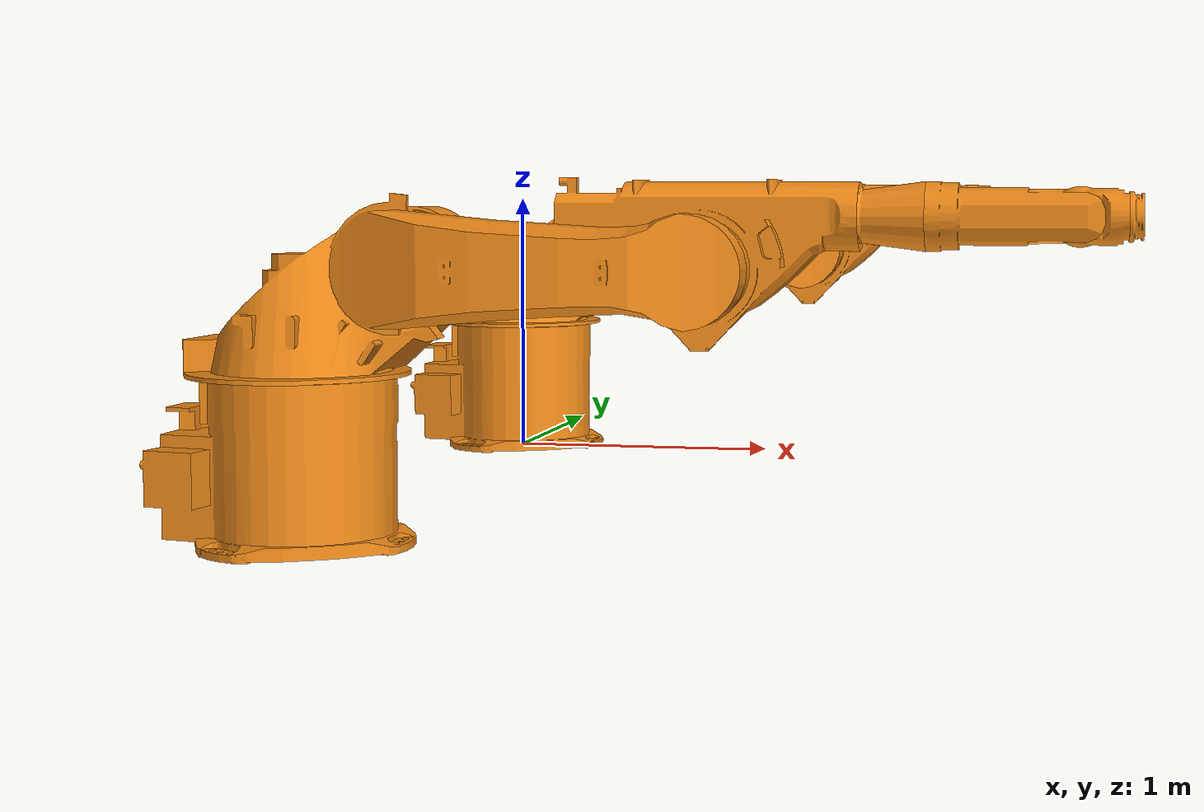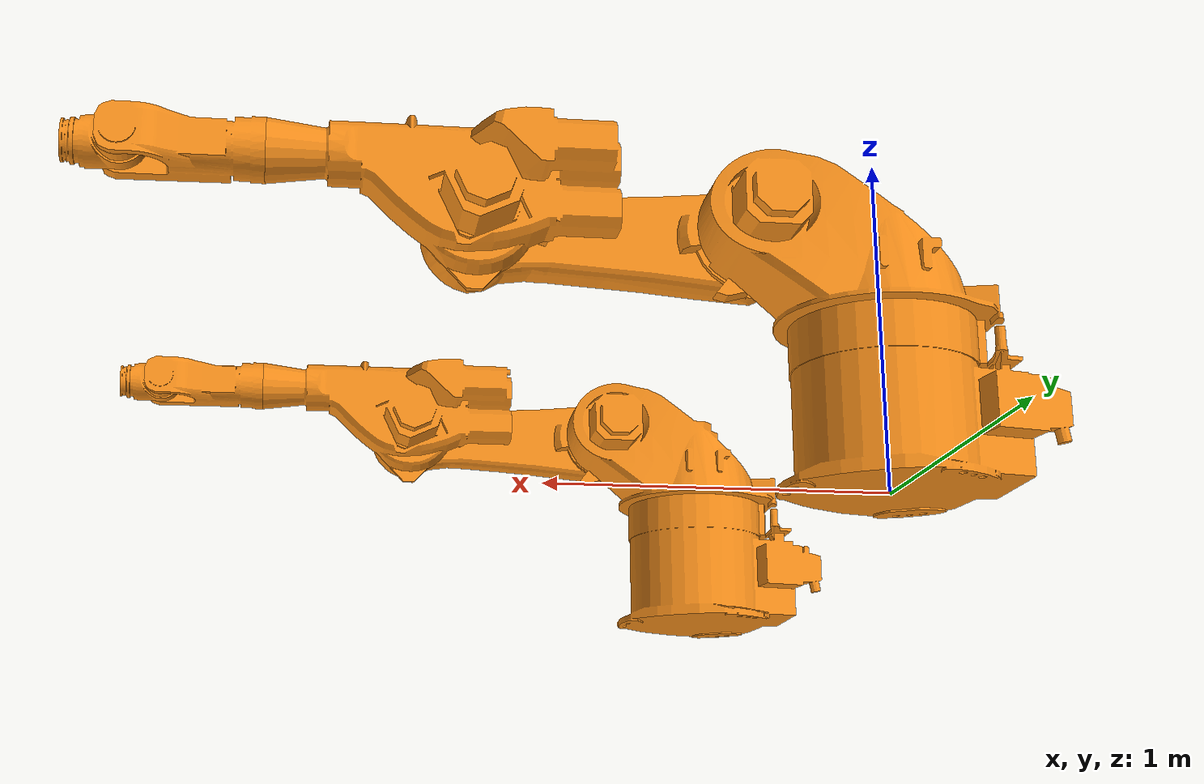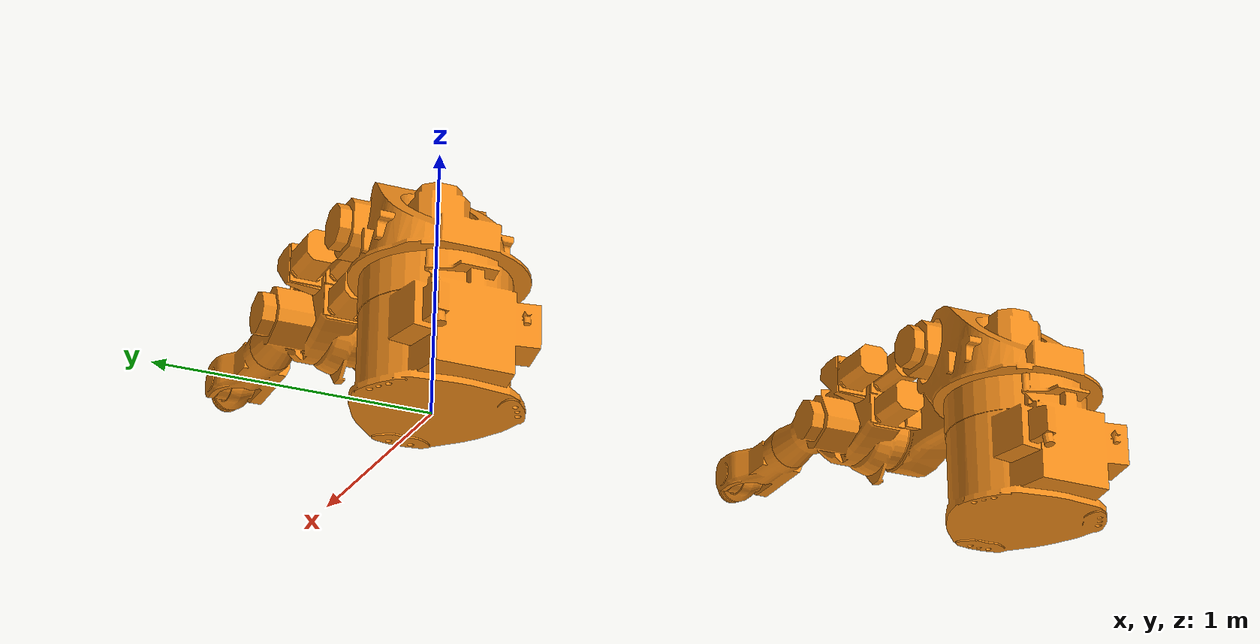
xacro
<?xml version="1.0"?>

<!--Generates a urdf from the macro in kr120r2500pro_macro.xacro -->
<robot name="UM_KR60_setup" xmlns:xacro="http://wiki.ros.org/xacro">
    <xacro:property name="left_prefix" value="left_" />
    <xacro:property name="right_prefix" value="right_" />
    <xacro:include filename="$(find kuka_kr60_support)/urdf/kr60_macro.xacro" />

    <link name="world"/>
    <joint name="${left_prefix}grounding" type="fixed">
        <parent link="world"/>
	<child link="${left_prefix}base_link"/>
	<origin xyz="0.0 -2.390051 0.0" rpy="0.0 0.0 0.0"/>
    </joint>
    <joint name="${right_prefix}grounding" type="fixed">
        <parent link="world"/>
	<child link="${right_prefix}base_link"/>
	<origin xyz="0.0 0.0 0.0" rpy="0.0 0.0 0.0"/>
    </joint>
    <xacro:kuka_kr60 prefix="${left_prefix}"/>
    <xacro:kuka_kr60 prefix="${right_prefix}"/>

</robot>

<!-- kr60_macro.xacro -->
<robot xmlns:xacro="http://wiki.ros.org/xacro">

  <xacro:property name="DEG2RAD" value="0.017453292519943295"/>

  <xacro:macro name="kuka_kr60" params="prefix">
		<xacro:macro name="transmission_block" params="joint_name">
			<transmission name="tran1">
				<type>transmission_interface/SimpleTransmission</type>
				<joint name="${joint_name}">
					<hardwareInterface>hardware_interface/PositionJointInterface</hardwareInterface>
				</joint>
				<actuator name="motor1">
					<hardwareInterface>hardware_interface/PositionJointInterface</hardwareInterface>
					<mechanicalReduction>1</mechanicalReduction>
				</actuator>
			</transmission>
		</xacro:macro>

    <!-- LINKS -->
    <!-- base link -->
    <link name="${prefix}base_link">
      <inertial>
        <origin xyz="-0.0436791859512302 0.000756993325450678 0.241811297515981" rpy="0 0 0"/>
        <mass value="2"/>
        <inertia ixx="0.01" ixy="0" ixz="0" iyy="0.01" iyz="0" izz="0.01" />
      </inertial>
      <visual>
        <origin xyz="0 0 0" rpy="0 0 0"/>
        <geometry>
          <mesh filename="package://kuka_kr60_support/meshes/base_link.dae" />
        </geometry>
				<material name="orange"/>
      </visual>
      <collision>
        <origin xyz="0 0 0" rpy="0 0 0"/>
        <geometry>
          <mesh filename="package://kuka_kr60_support/meshes/base_link.STL" />
        </geometry>
      </collision>
    </link>

    <!-- link 1 (A1) -->
    <link name="${prefix}link_1">
      <inertial>
        <origin xyz="0.140775001892144 0.211684256508182 -0.014282449384274" rpy="0 0 0"/>
        <mass value="2"/>
        <inertia ixx="0.01" ixy="0" ixz="0" iyy="0.01" iyz="0" izz="0.01" />
      </inertial>
      <visual>
        <origin xyz="0 0 0" rpy="0 0 0"/>
        <geometry>
          <mesh
          filename="package://kuka_kr60_support/meshes/link_1.dae" />
        </geometry>
				<material name="orange"/>
      </visual>
      <collision>
        <origin xyz="0 0 0" rpy="0 0 0"/>
        <geometry>
         <mesh
          filename="package://kuka_kr60_support/meshes/link_1.STL" />
        </geometry>
      </collision>
    </link>
    <!-- link 2 -->
    <link name="${prefix}link_2">
      <inertial>
        <origin xyz="0.382307904215314 -0.16306654546705 0.000499911356832916" rpy="0 0 0"/>
        <mass value="2"/>
        <inertia ixx="0.01" ixy="0" ixz="0" iyy="0.01" iyz="0" izz="0.01" />
      </inertial>
      <visual>
        <origin xyz="0 0 0" rpy="0 0 0"/>
        <geometry>
          <mesh filename="package://kuka_kr60_support/meshes/link_2.dae"/>
        </geometry>
				<material name="orange"/>
      </visual>
      <collision>
        <origin xyz="0 0 0" rpy="0 0 0"/>
        <geometry>
          <mesh filename="package://kuka_kr60_support/meshes/link_2.STL" />
        </geometry>
      </collision>
    </link>
    <!-- link 3 -->
    <link name="${prefix}link_3">
      <inertial>
        <origin xyz="0.0224104444574682 0.107197329797912 0.0695655063110385" rpy="0 0 0"/>
        <mass value="2"/>
        <inertia ixx="0.01" ixy="0" ixz="0" iyy="0.01" iyz="0" izz="0.01" />
      </inertial>
      <visual>
        <origin xyz="0 0 0" rpy="0 0 0"/>
        <geometry>
          <mesh filename="package://kuka_kr60_support/meshes/link_3.dae" />
        </geometry>
				<material name="orange"/>
      </visual>
      <collision>
        <origin xyz="0 0 0" rpy="0 0 0"/>
        <geometry>
          <mesh filename="package://kuka_kr60_support/meshes/link_3.STL" />
        </geometry>
      </collision>
    </link>
    <!-- link 4 -->
    <link name="${prefix}link_4">
      <inertial>
        <origin xyz="0.195695132615539 -0.0107352464057435 0.000109040539318039" rpy="0 0 0"/>
        <mass value="2"/>
        <inertia ixx="0.01" ixy="0" ixz="0" iyy="0.01" iyz="0" izz="0.01" />
      </inertial>
      <visual>
        <origin xyz="0 0 0" rpy="0 0 0"/>
        <geometry>
          <mesh filename="package://kuka_kr60_support/meshes/link_4.dae" />
        </geometry>
				<material name="orange"/>
      </visual>
      <collision>
        <origin xyz="0 0 0" rpy="0 0 0"/>
        <geometry>
          <mesh filename="package://kuka_kr60_support/meshes/link_4.STL" />
        </geometry>
      </collision>
    </link>
    <!-- link 5 -->
    <link name="${prefix}link_5">
      <inertial>
        <origin xyz="0.0258909572353643 0.0172714930553038 2.77581030716512E-06" rpy="0 0 0"/>
        <mass value="2"/>
        <inertia ixx="0.01" ixy="0" ixz="0" iyy="0.01" iyz="0" izz="0.01" />
      </inertial>
      <visual>
        <origin xyz="0 0 0" rpy="0 0 0"/>
        <geometry>
          <mesh filename="package://kuka_kr60_support/meshes/link_5.dae" />
        </geometry>
				<material name="orange"/>
      </visual>
      <collision>
        <origin xyz="0 0 0" rpy="0 0 0"/>
        <geometry>
          <mesh filename="package://kuka_kr60_support/meshes/link_5.STL" />
        </geometry>
      </collision>
    </link>
    <!-- link 6 -->
    <link name="${prefix}link_6">
      <inertial>
        <origin xyz="0.0169571197340979 5.10153992383522E-08 -7.36285182980634E-05" rpy="0 0 0"/>
        <mass value="2"/>
        <inertia ixx="0.01" ixy="0" ixz="0" iyy="0.01" iyz="0" izz="0.01" />
      </inertial>
      <visual>
        <origin xyz="0 0 0" rpy="0 0 0"/>
        <geometry>
          <mesh filename="package://kuka_kr60_support/meshes/link_6.dae" />
        </geometry>
				<material name="orange"/>
      </visual>
      <collision>
        <origin xyz="0 0 0" rpy="0 0 0"/>
        <geometry>
          <mesh filename="package://kuka_kr60_support/meshes/link_6.STL" />
        </geometry>
      </collision>
    </link>
    <!-- tool 0 -->
    <!-- This frame corresponds to the $FLANGE coordinate system in KUKA KRC controllers. -->
    <link name="${prefix}tool0"/>

 <!-- tool 0 -->
    <!-- This frame corresponds to the $FLANGE coordinate system in KUKA KRC controllers. -->
    <!-- END LINKS -->

    <!-- JOINTS -->
    <!-- joint 1 (A1) -->
    <joint name="${prefix}joint_a1" type="revolute">
      <origin xyz="0 0 0.47975" rpy="1.5708 0 0"/>
      <parent link="${prefix}base_link"/>
      <child link="${prefix}link_1"/>
      <axis xyz="0 -1 0"/>
      <limit effort="0" lower="-3.22" upper="3.22" velocity="${DEG2RAD * 156}"/>
			<hardwareInterface>hardware_interface/PositionJointInterface</hardwareInterface>
    </joint>

    <!-- joint 2 (A2) -->
    <joint name="${prefix}joint_a2" type="revolute">
      <origin xyz="0.35 0.33557 0.094" rpy="-1.5708 0 0"/>
      <parent link="${prefix}link_1"/>
      <child link="${prefix}link_2"/>
      <axis xyz="0 1 0"/>
      <limit effort="0" lower="-2.35" upper="0.61" velocity="${DEG2RAD * 156}"/>
			<hardwareInterface>hardware_interface/PositionJointInterface</hardwareInterface>
    </joint>
    <!-- joint 3 (A3) -->
    <joint name="${prefix}joint_a3" type="revolute">
      <origin xyz="0.83287 -0.0097315 0" rpy="0 0 -0.011684"/>
      <parent link="${prefix}link_2"/>
      <child link="${prefix}link_3"/>
      <axis xyz="0 1 0"/>
      <limit effort="0" lower="-2.09" upper="2.75" velocity="${DEG2RAD * 156}"/>
			<hardwareInterface>hardware_interface/PositionJointInterface</hardwareInterface>
    </joint>
    <!-- joint 4 (A4) -->
    <joint name="${prefix}joint_a4" type="revolute">
      <origin xyz="0.60824 0.089904 0.145" rpy="0 0 0"/>
      <parent link="${prefix}link_3"/>
      <child link="${prefix}link_4"/>
      <axis xyz="-1 0 0"/>
      <limit effort="0" lower="-6.1" upper="6.1" velocity="${DEG2RAD * 156}"/>
			<hardwareInterface>hardware_interface/PositionJointInterface</hardwareInterface>
    </joint>
    <!-- joint 5 (A5) -->
    <joint name="${prefix}joint_a5" type="revolute">
      <origin xyz="0.41176 0 6.3846E-05" rpy="0 -0.00079387 0.011684"/>
      <parent link="${prefix}link_4"/>
      <child link="${prefix}link_5"/>
      <axis xyz="0.011683 0.99993 0"/>
      <limit effort="0" lower="-2.07" upper="2.07" velocity="${DEG2RAD * 330}"/>
			<hardwareInterface>hardware_interface/PositionJointInterface</hardwareInterface>
    </joint>
    <!-- joint 6 (A6) -->
    <joint name="${prefix}joint_a6" type="revolute">

      <origin xyz="0.12607 -3.6549E-05 -2.8142E-05" rpy="0 0 0"/>
      <parent link="${prefix}link_5"/>
      <child link="${prefix}link_6"/>
      <axis xyz="-1 0 0"/>
      <limit effort="0" lower="-6.1" upper="6.1" velocity="${DEG2RAD * 156}"/>
			<hardwareInterface>hardware_interface/PositionJointInterface</hardwareInterface>
    </joint>
    <!-- tool frame - fixed frame -->
    <joint name="${prefix}joint_a6-tool0" type="fixed">
      <parent link="${prefix}link_6"/>
      <child link="${prefix}tool0"/>
      <origin xyz="0.215 0 0" rpy="0 ${DEG2RAD * 90} 0"/>
			<hardwareInterface>hardware_interface/PositionJointInterface</hardwareInterface>
    </joint>
    <!-- END JOINTS -->

    <!-- ROS base_link to KUKA $ROBROOT coordinate system transform  -->

		<xacro:transmission_block joint_name="${prefix}joint_a1"/>
		<xacro:transmission_block joint_name="${prefix}joint_a2"/>
		<xacro:transmission_block joint_name="${prefix}joint_a3"/>
		<xacro:transmission_block joint_name="${prefix}joint_a4"/>
		<xacro:transmission_block joint_name="${prefix}joint_a5"/>
		<xacro:transmission_block joint_name="${prefix}joint_a6"/>

		 <!-- ros_control plugin -->
  <gazebo>
    <plugin name="gazebo_ros_control" filename="libgazebo_ros_control.so">
      <robotNamespace>/kuka_kr60</robotNamespace>
    </plugin>
  </gazebo>

  </xacro:macro>

</robot>
